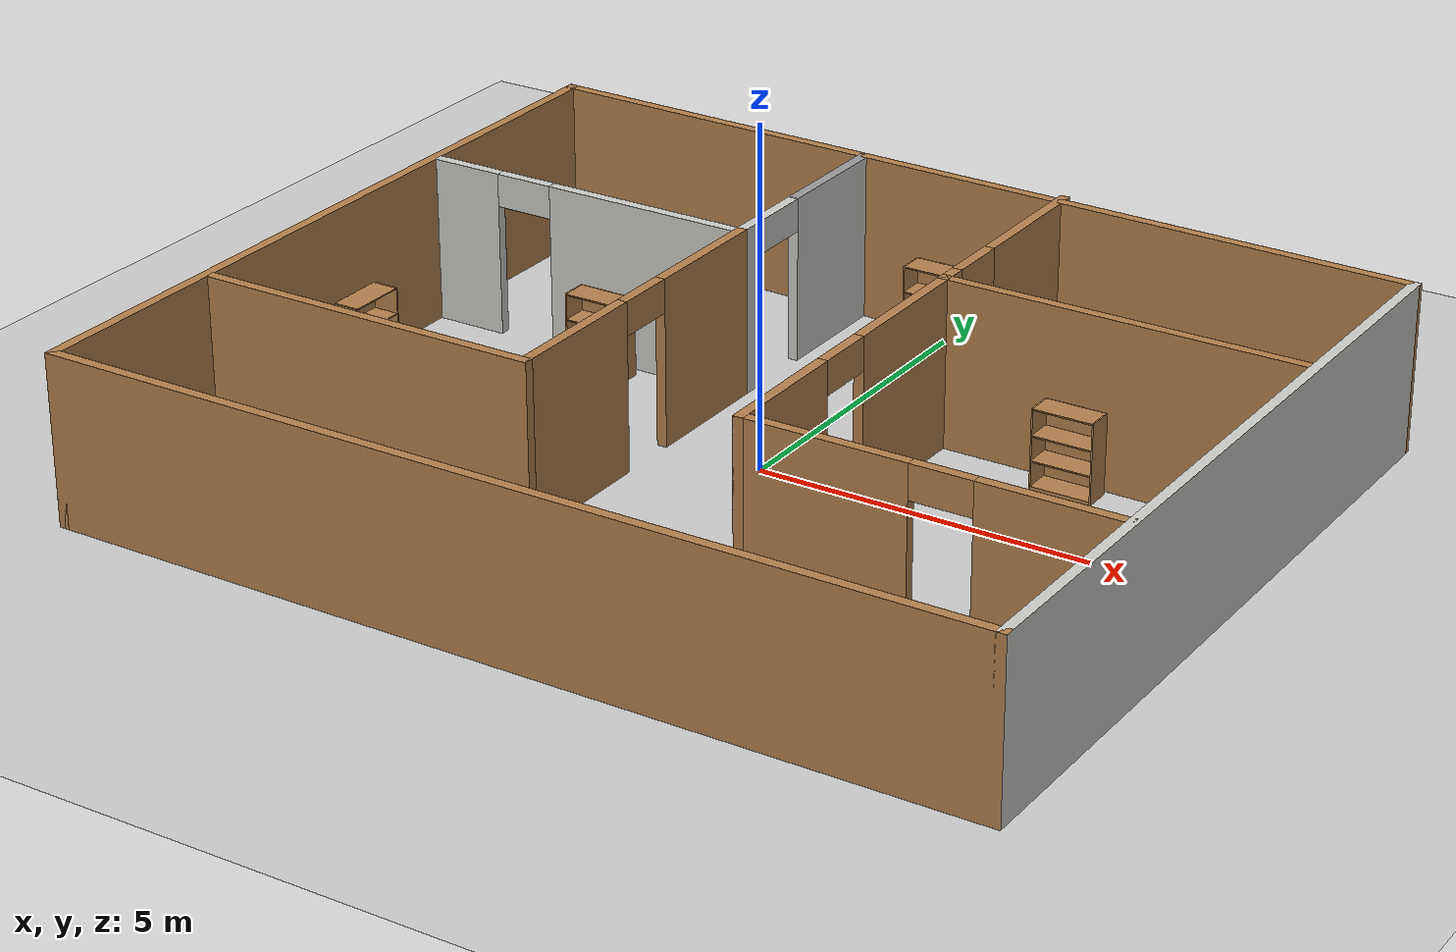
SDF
<sdf version="1.7">
 <world name="default">
  <light name="sun" type="directional">
   <pose>0 0 10 0 -0 0</pose>
   <diffuse>0.8 0.8 0.8 1</diffuse>
   <specular>0.2 0.2 0.2 1</specular>
   <attenuation>
    <range>1000</range>
    <constant>0.9</constant>
    <linear>0.01</linear>
    <quadratic>0.001</quadratic>
   </attenuation>
   <direction>-0.5 0.1 -0.9</direction>
   <spot><inner_angle>0</inner_angle><outer_angle>0</outer_angle><falloff>0</falloff></spot>
  </light>
  <model name="ground_plane">
   <static>1</static>
   <link name="link">
    <collision name="collision">
     <geometry><plane><normal>0 0 1</normal><size>100 100</size></plane></geometry>
     <surface><friction><ode><mu>100</mu><mu2>50</mu2></ode></friction></surface>
    </collision>
    <visual name="visual">
     <cast_shadows>0</cast_shadows>
     <geometry><plane><normal>0 0 1</normal><size>100 100</size></plane></geometry>
     <material>
      <script><uri>file://media/materials/scripts/gazebo.material</uri><name>Gazebo/Grey</name></script>
     </material>
    </visual>
   </link>
  </model>
  <gravity>0 0 -9.8</gravity>
  <magnetic_field>6e-06 2.3e-05 -4.2e-05</magnetic_field>
  <atmosphere type="adiabatic"/>
  <physics type="ode">
   <max_step_size>0.001</max_step_size>
   <real_time_factor>1</real_time_factor>
   <real_time_update_rate>1000</real_time_update_rate>
  </physics>
  <scene><ambient>0.4 0.4 0.4 1</ambient><background>0.7 0.7 0.7 1</background><shadows>1</shadows></scene>
  <audio><device>default</device></audio>
  <spherical_coordinates>
   <surface_model>EARTH_WGS84</surface_model>
   <latitude_deg>0</latitude_deg>
   <longitude_deg>0</longitude_deg>
   <elevation>0</elevation>
   <heading_deg>0</heading_deg>
  </spherical_coordinates>
  <model name="my_floor">
   <pose>0.146103 -0.407835 0 0 -0 0</pose>
   <link name="Wall_0">
    <collision name="Wall_0_Collision">
     <geometry><box><size>11.75 0.15 2.5</size></box></geometry>
     <pose>0 0 1.25 0 -0 0</pose>
    </collision>
    <visual name="Wall_0_Visual">
     <pose>0 0 1.25 0 -0 0</pose>
     <geometry><box><size>11.75 0.15 2.5</size></box></geometry>
     <material>
      <script><uri>file://media/materials/scripts/gazebo.material</uri><name>Gazebo/Wood</name></script>
      <ambient>1 1 1 1</ambient>
     </material>
     <meta><layer>0</layer></meta>
    </visual>
    <pose>-6.925 -0.00067 0 0 -0 -1.5708</pose>
   </link>
   <link name="Wall_1">
    <collision name="Wall_1_Collision">
     <geometry><box><size>14 0.15 2.5</size></box></geometry>
     <pose>0 0 1.25 0 -0 0</pose>
    </collision>
    <visual name="Wall_1_Visual">
     <pose>0 0 1.25 0 -0 0</pose>
     <geometry><box><size>14 0.15 2.5</size></box></geometry>
     <material>
      <script><uri>file://media/materials/scripts/gazebo.material</uri><name>Gazebo/Wood</name></script>
      <ambient>1 1 1 1</ambient>
     </material>
     <meta><layer>0</layer></meta>
    </visual>
    <pose>0 -5.80067 0 0 -0 0</pose>
   </link>
   <link name="Wall_11">
    <pose>-1.69407 -0.223031 0 0 -0 -1.5708</pose>
    <visual name="Wall_11_Visual_0">
     <pose>-1.59672 0 1.25 0 -0 0</pose>
     <geometry><box><size>2.05655 0.15 2.5</size></box></geometry>
     <material>
      <script><uri>file://media/materials/scripts/gazebo.material</uri><name>Gazebo/Wood</name></script>
      <ambient>1 1 1 1</ambient>
     </material>
     <meta><layer>0</layer></meta>
    </visual>
    <collision name="Wall_11_Collision_0">
     <geometry><box><size>2.05655 0.15 2.5</size></box></geometry>
     <pose>-1.59672 0 1.25 0 -0 0</pose>
    </collision>
    <visual name="Wall_11_Visual_1">
     <pose>1.47828 0 1.25 0 -0 0</pose>
     <geometry><box><size>2.29345 0.15 2.5</size></box></geometry>
     <material>
      <script><uri>file://media/materials/scripts/gazebo.material</uri><name>Gazebo/Wood</name></script>
      <ambient>1 1 1 1</ambient>
     </material>
     <meta><layer>0</layer></meta>
    </visual>
    <collision name="Wall_11_Collision_1">
     <geometry><box><size>2.29345 0.15 2.5</size></box></geometry>
     <pose>1.47828 0 1.25 0 -0 0</pose>
    </collision>
    <visual name="Wall_11_Visual_2">
     <pose>-0.118447 0 2.25 0 -0 0</pose>
     <geometry><box><size>0.9 0.15 0.5</size></box></geometry>
     <material>
      <script><uri>file://media/materials/scripts/gazebo.material</uri><name>Gazebo/Wood</name></script>
      <ambient>1 1 1 1</ambient>
     </material>
     <meta><layer>0</layer></meta>
    </visual>
    <collision name="Wall_11_Collision_2">
     <geometry><box><size>0.9 0.15 0.5</size></box></geometry>
     <pose>-0.118447 0 2.25 0 -0 0</pose>
    </collision>
   </link>
   <link name="Wall_12">
    <collision name="Wall_12_Collision">
     <geometry><box><size>5.25 0.15 2.5</size></box></geometry>
     <pose>0 0 1.25 0 -0 0</pose>
    </collision>
    <visual name="Wall_12_Visual">
     <pose>0 0 1.25 0 -0 0</pose>
     <geometry><box><size>5.25 0.15 2.5</size></box></geometry>
     <material>
      <script><uri>file://media/materials/scripts/gazebo.material</uri><name>Gazebo/Wood</name></script>
      <ambient>1 1 1 1</ambient>
     </material>
     <meta><layer>0</layer></meta>
    </visual>
    <pose>-4.24407 -2.77303 0 0 -0 3.14159</pose>
   </link>
   <link name="Wall_14">
    <pose>1.5179 4.09374 0 0 -0 -1.5708</pose>
    <visual name="Wall_14_Visual_0">
     <pose>-0.652711 0 1.25 0 -0 0</pose>
     <geometry><box><size>2.19458 0.15 2.5</size></box></geometry>
     <material>
      <script><uri>file://media/materials/scripts/gazebo.material</uri><name>Gazebo/Wood</name></script>
      <ambient>1 1 1 1</ambient>
     </material>
     <meta><layer>0</layer></meta>
    </visual>
    <collision name="Wall_14_Collision_0">
     <geometry><box><size>2.19458 0.15 2.5</size></box></geometry>
     <pose>-0.652711 0 1.25 0 -0 0</pose>
    </collision>
    <visual name="Wall_14_Visual_1">
     <pose>1.54729 0 1.25 0 -0 0</pose>
     <geometry><box><size>0.405421 0.15 2.5</size></box></geometry>
     <material>
      <script><uri>file://media/materials/scripts/gazebo.material</uri><name>Gazebo/Wood</name></script>
      <ambient>1 1 1 1</ambient>
     </material>
     <meta><layer>0</layer></meta>
    </visual>
    <collision name="Wall_14_Collision_1">
     <geometry><box><size>0.405421 0.15 2.5</size></box></geometry>
     <pose>1.54729 0 1.25 0 -0 0</pose>
    </collision>
    <visual name="Wall_14_Visual_2">
     <pose>0.894579 0 2.25 0 -0 0</pose>
     <geometry><box><size>0.9 0.15 0.5</size></box></geometry>
     <material>
      <script><uri>file://media/materials/scripts/gazebo.material</uri><name>Gazebo/Wood</name></script>
      <ambient>1 1 1 1</ambient>
     </material>
     <meta><layer>0</layer></meta>
    </visual>
    <collision name="Wall_14_Collision_2">
     <geometry><box><size>0.9 0.15 0.5</size></box></geometry>
     <pose>0.894579 0 2.25 0 -0 0</pose>
    </collision>
   </link>
   <link name="Wall_15">
    <collision name="Wall_15_Collision">
     <geometry><box><size>5.5 0.15 2.5</size></box></geometry>
     <pose>0 0 1.25 0 -0 0</pose>
    </collision>
    <visual name="Wall_15_Visual">
     <pose>0 0 1.25 0 -0 0</pose>
     <geometry><box><size>5.5 0.15 2.5</size></box></geometry>
     <material>
      <script><uri>file://media/materials/scripts/gazebo.material</uri><name>Gazebo/Wood</name></script>
      <ambient>1 1 1 1</ambient>
     </material>
     <meta><layer>0</layer></meta>
    </visual>
    <pose>4.1929 2.41874 0 0 -0 0</pose>
   </link>
   <link name="Wall_17">
    <pose>1.5179 -0.131261 0 0 -0 -1.5708</pose>
    <visual name="Wall_17_Visual_0">
     <pose>-1.45907 0 1.25 0 -0 0</pose>
     <geometry><box><size>2.33187 0.15 2.5</size></box></geometry>
     <material>
      <script><uri>file://media/materials/scripts/gazebo.material</uri><name>Gazebo/Wood</name></script>
      <ambient>1 1 1 1</ambient>
     </material>
     <meta><layer>0</layer></meta>
    </visual>
    <collision name="Wall_17_Collision_0">
     <geometry><box><size>2.33187 0.15 2.5</size></box></geometry>
     <pose>-1.45907 0 1.25 0 -0 0</pose>
    </collision>
    <visual name="Wall_17_Visual_1">
     <pose>1.61593 0 1.25 0 -0 0</pose>
     <geometry><box><size>2.01814 0.15 2.5</size></box></geometry>
     <material>
      <script><uri>file://media/materials/scripts/gazebo.material</uri><name>Gazebo/Wood</name></script>
      <ambient>1 1 1 1</ambient>
     </material>
     <meta><layer>0</layer></meta>
    </visual>
    <collision name="Wall_17_Collision_1">
     <geometry><box><size>2.01814 0.15 2.5</size></box></geometry>
     <pose>1.61593 0 1.25 0 -0 0</pose>
    </collision>
    <visual name="Wall_17_Visual_2">
     <pose>0.156865 0 2.25 0 -0 0</pose>
     <geometry><box><size>0.9 0.15 0.5</size></box></geometry>
     <material>
      <script><uri>file://media/materials/scripts/gazebo.material</uri><name>Gazebo/Wood</name></script>
      <ambient>1 1 1 1</ambient>
     </material>
     <meta><layer>0</layer></meta>
    </visual>
    <collision name="Wall_17_Collision_2">
     <geometry><box><size>0.9 0.15 0.5</size></box></geometry>
     <pose>0.156865 0 2.25 0 -0 0</pose>
    </collision>
   </link>
   <link name="Wall_18">
    <pose>4.1929 -2.68126 0 0 -0 0</pose>
    <visual name="Wall_18_Visual_0">
     <pose>-1.49976 0 1.25 0 -0 0</pose>
     <geometry><box><size>2.50048 0.15 2.5</size></box></geometry>
     <material>
      <script><uri>file://media/materials/scripts/gazebo.material</uri><name>Gazebo/Wood</name></script>
      <ambient>1 1 1 1</ambient>
     </material>
     <meta><layer>0</layer></meta>
    </visual>
    <collision name="Wall_18_Collision_0">
     <geometry><box><size>2.50048 0.15 2.5</size></box></geometry>
     <pose>-1.49976 0 1.25 0 -0 0</pose>
    </collision>
    <visual name="Wall_18_Visual_1">
     <pose>1.70024 0 1.25 0 -0 0</pose>
     <geometry><box><size>2.09952 0.15 2.5</size></box></geometry>
     <material>
      <script><uri>file://media/materials/scripts/gazebo.material</uri><name>Gazebo/Wood</name></script>
      <ambient>1 1 1 1</ambient>
     </material>
     <meta><layer>0</layer></meta>
    </visual>
    <collision name="Wall_18_Collision_1">
     <geometry><box><size>2.09952 0.15 2.5</size></box></geometry>
     <pose>1.70024 0 1.25 0 -0 0</pose>
    </collision>
    <visual name="Wall_18_Visual_2">
     <pose>0.200481 0 2.25 0 -0 0</pose>
     <geometry><box><size>0.9 0.15 0.5</size></box></geometry>
     <material>
      <script><uri>file://media/materials/scripts/gazebo.material</uri><name>Gazebo/Wood</name></script>
      <ambient>1 1 1 1</ambient>
     </material>
     <meta><layer>0</layer></meta>
    </visual>
    <collision name="Wall_18_Collision_2">
     <geometry><box><size>0.9 0.15 0.5</size></box></geometry>
     <pose>0.200481 0 2.25 0 -0 0</pose>
    </collision>
   </link>
   <link name="Wall_2">
    <collision name="Wall_2_Collision">
     <geometry><box><size>11.5 0.15 2.5</size></box></geometry>
     <pose>0 0 1.25 0 -0 0</pose>
    </collision>
    <visual name="Wall_2_Visual">
     <pose>0 0 1.25 0 -0 0</pose>
     <geometry><box><size>11.5 0.15 2.5</size></box></geometry>
     <material>
      <script><uri>file://media/materials/scripts/gazebo.material</uri><name>Gazebo/CeilingTiled</name></script>
      <ambient>1 1 1 1</ambient>
     </material>
     <meta><layer>0</layer></meta>
    </visual>
    <pose>6.925 -0.12567 0 0 -0 1.5708</pose>
   </link>
   <link name="Wall_3">
    <collision name="Wall_3_Collision">
     <geometry><box><size>14.0023 0.15 2.5</size></box></geometry>
     <pose>0 0 1.25 0 -0 0</pose>
    </collision>
    <visual name="Wall_3_Visual">
     <pose>0 0 1.25 0 -0 0</pose>
     <geometry><box><size>14.0023 0.15 2.5</size></box></geometry>
     <material>
      <script><uri>file://media/materials/scripts/gazebo.material</uri><name>Gazebo/Wood</name></script>
      <ambient>1 1 1 1</ambient>
     </material>
     <meta><layer>0</layer></meta>
    </visual>
    <pose>0 5.67433 0 0 -0 3.12354</pose>
   </link>
   <link name="Wall_5">
    <collision name="Wall_5_Collision">
     <geometry><box><size>2 0.15 2.5</size></box></geometry>
     <pose>0 0 1.25 0 -0 0</pose>
    </collision>
    <visual name="Wall_5_Visual">
     <pose>0 0 1.25 0 -0 0</pose>
     <geometry><box><size>2 0.15 2.5</size></box></geometry>
     <material>
      <script><uri>file://media/materials/scripts/gazebo.material</uri><name>Gazebo/Grey</name></script>
      <ambient>1 1 1 1</ambient>
     </material>
     <meta><layer>0</layer></meta>
    </visual>
    <pose>-1.69407 4.75197 0 0 -0 -1.5708</pose>
   </link>
   <link name="Wall_7">
    <pose>-1.69407 4.00197 0 0 -0 -1.5708</pose>
    <visual name="Wall_7_Visual_0">
     <pose>-0.744481 0 1.25 0 -0 0</pose>
     <geometry><box><size>2.01104 0.15 2.5</size></box></geometry>
     <material>
      <script><uri>file://media/materials/scripts/gazebo.material</uri><name>Gazebo/CeilingTiled</name></script>
      <ambient>1 1 1 1</ambient>
     </material>
     <meta><layer>0</layer></meta>
    </visual>
    <collision name="Wall_7_Collision_0">
     <geometry><box><size>2.01104 0.15 2.5</size></box></geometry>
     <pose>-0.744481 0 1.25 0 -0 0</pose>
    </collision>
    <visual name="Wall_7_Visual_1">
     <pose>1.45552 0 1.25 0 -0 0</pose>
     <geometry><box><size>0.588962 0.15 2.5</size></box></geometry>
     <material>
      <script><uri>file://media/materials/scripts/gazebo.material</uri><name>Gazebo/CeilingTiled</name></script>
      <ambient>1 1 1 1</ambient>
     </material>
     <meta><layer>0</layer></meta>
    </visual>
    <collision name="Wall_7_Collision_1">
     <geometry><box><size>0.588962 0.15 2.5</size></box></geometry>
     <pose>1.45552 0 1.25 0 -0 0</pose>
    </collision>
    <visual name="Wall_7_Visual_2">
     <pose>0.711038 0 2.25 0 -0 0</pose>
     <geometry><box><size>0.9 0.15 0.5</size></box></geometry>
     <material>
      <script><uri>file://media/materials/scripts/gazebo.material</uri><name>Gazebo/CeilingTiled</name></script>
      <ambient>1 1 1 1</ambient>
     </material>
     <meta><layer>0</layer></meta>
    </visual>
    <collision name="Wall_7_Collision_2">
     <geometry><box><size>0.9 0.15 0.5</size></box></geometry>
     <pose>0.711038 0 2.25 0 -0 0</pose>
    </collision>
   </link>
   <link name="Wall_8">
    <pose>-4.24407 2.32697 0 0 -0 3.14159</pose>
    <visual name="Wall_8_Visual_0">
     <pose>-1.00768 0 1.25 0 -0 0</pose>
     <geometry><box><size>3.23465 0.15 2.5</size></box></geometry>
     <material>
      <script><uri>file://media/materials/scripts/gazebo.material</uri><name>Gazebo/CeilingTiled</name></script>
      <ambient>1 1 1 1</ambient>
     </material>
     <meta><layer>0</layer></meta>
    </visual>
    <collision name="Wall_8_Collision_0">
     <geometry><box><size>3.23465 0.15 2.5</size></box></geometry>
     <pose>-1.00768 0 1.25 0 -0 0</pose>
    </collision>
    <visual name="Wall_8_Visual_1">
     <pose>2.06732 0 1.25 0 -0 0</pose>
     <geometry><box><size>1.11535 0.15 2.5</size></box></geometry>
     <material>
      <script><uri>file://media/materials/scripts/gazebo.material</uri><name>Gazebo/CeilingTiled</name></script>
      <ambient>1 1 1 1</ambient>
     </material>
     <meta><layer>0</layer></meta>
    </visual>
    <collision name="Wall_8_Collision_1">
     <geometry><box><size>1.11535 0.15 2.5</size></box></geometry>
     <pose>2.06732 0 1.25 0 -0 0</pose>
    </collision>
    <visual name="Wall_8_Visual_2">
     <pose>1.05965 0 2.25 0 -0 0</pose>
     <geometry><box><size>0.9 0.15 0.5</size></box></geometry>
     <material>
      <script><uri>file://media/materials/scripts/gazebo.material</uri><name>Gazebo/CeilingTiled</name></script>
      <ambient>1 1 1 1</ambient>
     </material>
     <meta><layer>0</layer></meta>
    </visual>
    <collision name="Wall_8_Collision_2">
     <geometry><box><size>0.9 0.15 0.5</size></box></geometry>
     <pose>1.05965 0 2.25 0 -0 0</pose>
    </collision>
   </link>
   <static>1</static>
  </model>
  <model name="bookshelf">
   <static>1</static>
   <link name="link">
    <inertial><mass>1</mass></inertial>
    <collision name="back">
     <pose>0 0.005 0.6 0 -0 0</pose>
     <geometry><box><size>0.9 0.01 1.2</size></box></geometry>
    </collision>
    <visual name="visual1">
     <pose>0 0.005 0.6 0 -0 0</pose>
     <geometry><box><size>0.9 0.01 1.2</size></box></geometry>
     <material>
      <script><uri>file://media/materials/scripts/gazebo.material</uri><name>Gazebo/Wood</name></script>
     </material>
    </visual>
    <collision name="left_side">
     <pose>0.45 -0.195 0.6 0 -0 0</pose>
     <geometry><box><size>0.02 0.4 1.2</size></box></geometry>
    </collision>
    <visual name="visual2">
     <pose>0.45 -0.195 0.6 0 -0 0</pose>
     <geometry><box><size>0.02 0.4 1.2</size></box></geometry>
     <material>
      <script><uri>file://media/materials/scripts/gazebo.material</uri><name>Gazebo/Wood</name></script>
     </material>
    </visual>
    <collision name="right_side">
     <pose>-0.45 -0.195 0.6 0 -0 0</pose>
     <geometry><box><size>0.02 0.4 1.2</size></box></geometry>
    </collision>
    <visual name="visual3">
     <pose>-0.45 -0.195 0.6 0 -0 0</pose>
     <geometry><box><size>0.02 0.4 1.2</size></box></geometry>
     <material>
      <script><uri>file://media/materials/scripts/gazebo.material</uri><name>Gazebo/Wood</name></script>
     </material>
    </visual>
    <collision name="bottom">
     <pose>0 -0.195 0.03 0 -0 0</pose>
     <geometry><box><size>0.88 0.4 0.06</size></box></geometry>
    </collision>
    <visual name="visual4">
     <pose>0 -0.195 0.03 0 -0 0</pose>
     <geometry><box><size>0.88 0.4 0.06</size></box></geometry>
     <material>
      <script><uri>file://media/materials/scripts/gazebo.material</uri><name>Gazebo/Wood</name></script>
     </material>
    </visual>
    <collision name="top">
     <pose>0 -0.195 1.19 0 -0 0</pose>
     <geometry><box><size>0.88 0.4 0.02</size></box></geometry>
    </collision>
    <visual name="visual5">
     <pose>0 -0.195 1.19 0 -0 0</pose>
     <geometry><box><size>0.88 0.4 0.02</size></box></geometry>
     <material>
      <script><uri>file://media/materials/scripts/gazebo.material</uri><name>Gazebo/Wood</name></script>
     </material>
    </visual>
    <collision name="low_shelf">
     <pose>0 -0.195 0.43 0 -0 0</pose>
     <geometry><box><size>0.88 0.4 0.02</size></box></geometry>
    </collision>
    <visual name="visual6">
     <pose>0 -0.195 0.43 0 -0 0</pose>
     <geometry><box><size>0.88 0.4 0.02</size></box></geometry>
     <material>
      <script><uri>file://media/materials/scripts/gazebo.material</uri><name>Gazebo/Wood</name></script>
     </material>
    </visual>
    <collision name="high_shelf">
     <pose>0 -0.195 0.8 0 -0 0</pose>
     <geometry><box><size>0.88 0.4 0.02</size></box></geometry>
    </collision>
    <visual name="visual7">
     <pose>0 -0.195 0.8 0 -0 0</pose>
     <geometry><box><size>0.88 0.4 0.02</size></box></geometry>
     <material>
      <script><uri>file://media/materials/scripts/gazebo.material</uri><name>Gazebo/Wood</name></script>
     </material>
    </visual>
   </link>
   <pose>-3.60324 1.6665 0 0 -0 0</pose>
  </model>
  <model name="bookshelf_0">
   <static>1</static>
   <link name="link">
    <inertial><mass>1</mass></inertial>
    <collision name="back">
     <pose>0 0.005 0.6 0 -0 0</pose>
     <geometry><box><size>0.9 0.01 1.2</size></box></geometry>
    </collision>
    <visual name="visual1">
     <pose>0 0.005 0.6 0 -0 0</pose>
     <geometry><box><size>0.9 0.01 1.2</size></box></geometry>
     <material>
      <script><uri>file://media/materials/scripts/gazebo.material</uri><name>Gazebo/Wood</name></script>
     </material>
    </visual>
    <collision name="left_side">
     <pose>0.45 -0.195 0.6 0 -0 0</pose>
     <geometry><box><size>0.02 0.4 1.2</size></box></geometry>
    </collision>
    <visual name="visual2">
     <pose>0.45 -0.195 0.6 0 -0 0</pose>
     <geometry><box><size>0.02 0.4 1.2</size></box></geometry>
     <material>
      <script><uri>file://media/materials/scripts/gazebo.material</uri><name>Gazebo/Wood</name></script>
     </material>
    </visual>
    <collision name="right_side">
     <pose>-0.45 -0.195 0.6 0 -0 0</pose>
     <geometry><box><size>0.02 0.4 1.2</size></box></geometry>
    </collision>
    <visual name="visual3">
     <pose>-0.45 -0.195 0.6 0 -0 0</pose>
     <geometry><box><size>0.02 0.4 1.2</size></box></geometry>
     <material>
      <script><uri>file://media/materials/scripts/gazebo.material</uri><name>Gazebo/Wood</name></script>
     </material>
    </visual>
    <collision name="bottom">
     <pose>0 -0.195 0.03 0 -0 0</pose>
     <geometry><box><size>0.88 0.4 0.06</size></box></geometry>
    </collision>
    <visual name="visual4">
     <pose>0 -0.195 0.03 0 -0 0</pose>
     <geometry><box><size>0.88 0.4 0.06</size></box></geometry>
     <material>
      <script><uri>file://media/materials/scripts/gazebo.material</uri><name>Gazebo/Wood</name></script>
     </material>
    </visual>
    <collision name="top">
     <pose>0 -0.195 1.19 0 -0 0</pose>
     <geometry><box><size>0.88 0.4 0.02</size></box></geometry>
    </collision>
    <visual name="visual5">
     <pose>0 -0.195 1.19 0 -0 0</pose>
     <geometry><box><size>0.88 0.4 0.02</size></box></geometry>
     <material>
      <script><uri>file://media/materials/scripts/gazebo.material</uri><name>Gazebo/Wood</name></script>
     </material>
    </visual>
    <collision name="low_shelf">
     <pose>0 -0.195 0.43 0 -0 0</pose>
     <geometry><box><size>0.88 0.4 0.02</size></box></geometry>
    </collision>
    <visual name="visual6">
     <pose>0 -0.195 0.43 0 -0 0</pose>
     <geometry><box><size>0.88 0.4 0.02</size></box></geometry>
     <material>
      <script><uri>file://media/materials/scripts/gazebo.material</uri><name>Gazebo/Wood</name></script>
     </material>
    </visual>
    <collision name="high_shelf">
     <pose>0 -0.195 0.8 0 -0 0</pose>
     <geometry><box><size>0.88 0.4 0.02</size></box></geometry>
    </collision>
    <visual name="visual7">
     <pose>0 -0.195 0.8 0 -0 0</pose>
     <geometry><box><size>0.88 0.4 0.02</size></box></geometry>
     <material>
      <script><uri>file://media/materials/scripts/gazebo.material</uri><name>Gazebo/Wood</name></script>
     </material>
    </visual>
   </link>
   <pose>-0.054612 5.07813 0 0 -0 0</pose>
  </model>
  <model name="bookshelf_1">
   <static>1</static>
   <link name="link">
    <inertial><mass>1</mass></inertial>
    <collision name="back">
     <pose>0 0.005 0.6 0 -0 0</pose>
     <geometry><box><size>0.9 0.01 1.2</size></box></geometry>
    </collision>
    <visual name="visual1">
     <pose>0 0.005 0.6 0 -0 0</pose>
     <geometry><box><size>0.9 0.01 1.2</size></box></geometry>
     <material>
      <script><uri>file://media/materials/scripts/gazebo.material</uri><name>Gazebo/Wood</name></script>
     </material>
    </visual>
    <collision name="left_side">
     <pose>0.45 -0.195 0.6 0 -0 0</pose>
     <geometry><box><size>0.02 0.4 1.2</size></box></geometry>
    </collision>
    <visual name="visual2">
     <pose>0.45 -0.195 0.6 0 -0 0</pose>
     <geometry><box><size>0.02 0.4 1.2</size></box></geometry>
     <material>
      <script><uri>file://media/materials/scripts/gazebo.material</uri><name>Gazebo/Wood</name></script>
     </material>
    </visual>
    <collision name="right_side">
     <pose>-0.45 -0.195 0.6 0 -0 0</pose>
     <geometry><box><size>0.02 0.4 1.2</size></box></geometry>
    </collision>
    <visual name="visual3">
     <pose>-0.45 -0.195 0.6 0 -0 0</pose>
     <geometry><box><size>0.02 0.4 1.2</size></box></geometry>
     <material>
      <script><uri>file://media/materials/scripts/gazebo.material</uri><name>Gazebo/Wood</name></script>
     </material>
    </visual>
    <collision name="bottom">
     <pose>0 -0.195 0.03 0 -0 0</pose>
     <geometry><box><size>0.88 0.4 0.06</size></box></geometry>
    </collision>
    <visual name="visual4">
     <pose>0 -0.195 0.03 0 -0 0</pose>
     <geometry><box><size>0.88 0.4 0.06</size></box></geometry>
     <material>
      <script><uri>file://media/materials/scripts/gazebo.material</uri><name>Gazebo/Wood</name></script>
     </material>
    </visual>
    <collision name="top">
     <pose>0 -0.195 1.19 0 -0 0</pose>
     <geometry><box><size>0.88 0.4 0.02</size></box></geometry>
    </collision>
    <visual name="visual5">
     <pose>0 -0.195 1.19 0 -0 0</pose>
     <geometry><box><size>0.88 0.4 0.02</size></box></geometry>
     <material>
      <script><uri>file://media/materials/scripts/gazebo.material</uri><name>Gazebo/Wood</name></script>
     </material>
    </visual>
    <collision name="low_shelf">
     <pose>0 -0.195 0.43 0 -0 0</pose>
     <geometry><box><size>0.88 0.4 0.02</size></box></geometry>
    </collision>
    <visual name="visual6">
     <pose>0 -0.195 0.43 0 -0 0</pose>
     <geometry><box><size>0.88 0.4 0.02</size></box></geometry>
     <material>
      <script><uri>file://media/materials/scripts/gazebo.material</uri><name>Gazebo/Wood</name></script>
     </material>
    </visual>
    <collision name="high_shelf">
     <pose>0 -0.195 0.8 0 -0 0</pose>
     <geometry><box><size>0.88 0.4 0.02</size></box></geometry>
    </collision>
    <visual name="visual7">
     <pose>0 -0.195 0.8 0 -0 0</pose>
     <geometry><box><size>0.88 0.4 0.02</size></box></geometry>
     <material>
      <script><uri>file://media/materials/scripts/gazebo.material</uri><name>Gazebo/Wood</name></script>
     </material>
    </visual>
   </link>
   <pose>-6.6002 -0.284659 0 0 -0 1.56858</pose>
  </model>
  <model name="bookshelf_2">
   <static>1</static>
   <link name="link">
    <inertial><mass>1</mass></inertial>
    <collision name="back">
     <pose>0 0.005 0.6 0 -0 0</pose>
     <geometry><box><size>0.9 0.01 1.2</size></box></geometry>
    </collision>
    <visual name="visual1">
     <pose>0 0.005 0.6 0 -0 0</pose>
     <geometry><box><size>0.9 0.01 1.2</size></box></geometry>
     <material>
      <script><uri>file://media/materials/scripts/gazebo.material</uri><name>Gazebo/Wood</name></script>
     </material>
    </visual>
    <collision name="left_side">
     <pose>0.45 -0.195 0.6 0 -0 0</pose>
     <geometry><box><size>0.02 0.4 1.2</size></box></geometry>
    </collision>
    <visual name="visual2">
     <pose>0.45 -0.195 0.6 0 -0 0</pose>
     <geometry><box><size>0.02 0.4 1.2</size></box></geometry>
     <material>
      <script><uri>file://media/materials/scripts/gazebo.material</uri><name>Gazebo/Wood</name></script>
     </material>
    </visual>
    <collision name="right_side">
     <pose>-0.45 -0.195 0.6 0 -0 0</pose>
     <geometry><box><size>0.02 0.4 1.2</size></box></geometry>
    </collision>
    <visual name="visual3">
     <pose>-0.45 -0.195 0.6 0 -0 0</pose>
     <geometry><box><size>0.02 0.4 1.2</size></box></geometry>
     <material>
      <script><uri>file://media/materials/scripts/gazebo.material</uri><name>Gazebo/Wood</name></script>
     </material>
    </visual>
    <collision name="bottom">
     <pose>0 -0.195 0.03 0 -0 0</pose>
     <geometry><box><size>0.88 0.4 0.06</size></box></geometry>
    </collision>
    <visual name="visual4">
     <pose>0 -0.195 0.03 0 -0 0</pose>
     <geometry><box><size>0.88 0.4 0.06</size></box></geometry>
     <material>
      <script><uri>file://media/materials/scripts/gazebo.material</uri><name>Gazebo/Wood</name></script>
     </material>
    </visual>
    <collision name="top">
     <pose>0 -0.195 1.19 0 -0 0</pose>
     <geometry><box><size>0.88 0.4 0.02</size></box></geometry>
    </collision>
    <visual name="visual5">
     <pose>0 -0.195 1.19 0 -0 0</pose>
     <geometry><box><size>0.88 0.4 0.02</size></box></geometry>
     <material>
      <script><uri>file://media/materials/scripts/gazebo.material</uri><name>Gazebo/Wood</name></script>
     </material>
    </visual>
    <collision name="low_shelf">
     <pose>0 -0.195 0.43 0 -0 0</pose>
     <geometry><box><size>0.88 0.4 0.02</size></box></geometry>
    </collision>
    <visual name="visual6">
     <pose>0 -0.195 0.43 0 -0 0</pose>
     <geometry><box><size>0.88 0.4 0.02</size></box></geometry>
     <material>
      <script><uri>file://media/materials/scripts/gazebo.material</uri><name>Gazebo/Wood</name></script>
     </material>
    </visual>
    <collision name="high_shelf">
     <pose>0 -0.195 0.8 0 -0 0</pose>
     <geometry><box><size>0.88 0.4 0.02</size></box></geometry>
    </collision>
    <visual name="visual7">
     <pose>0 -0.195 0.8 0 -0 0</pose>
     <geometry><box><size>0.88 0.4 0.02</size></box></geometry>
     <material>
      <script><uri>file://media/materials/scripts/gazebo.material</uri><name>Gazebo/Wood</name></script>
     </material>
    </visual>
   </link>
   <pose>3.78807 1.83005 0 0 -0 0</pose>
  </model>
 </world>
</sdf>
